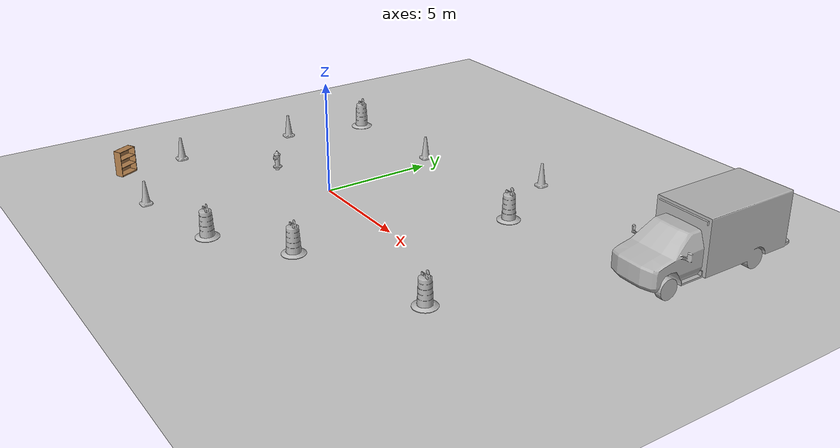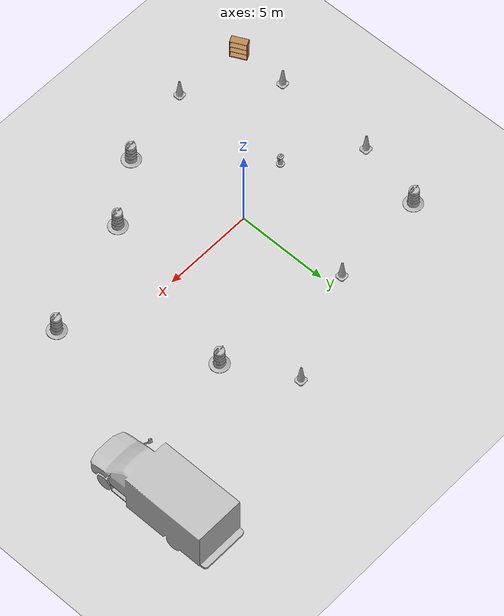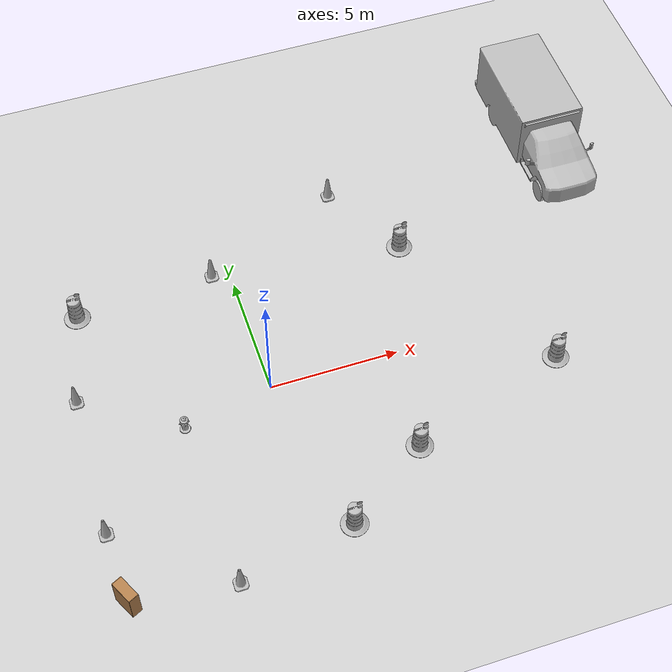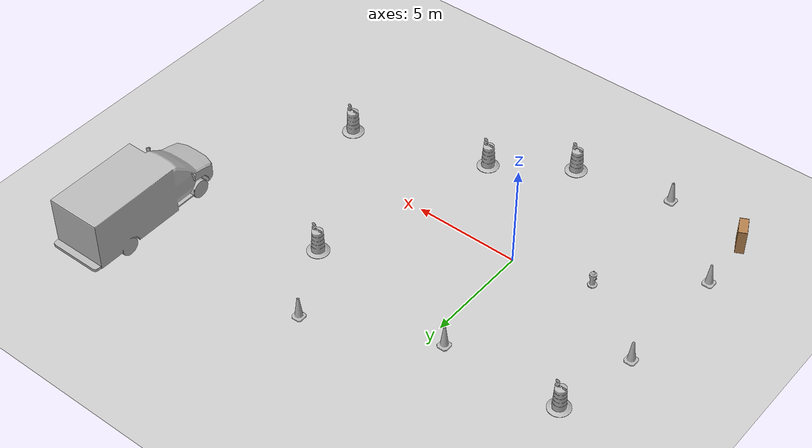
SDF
<sdf version="1.7">
 <world name="default">
  <light name="sun" type="directional">
   <pose>0 0 10 0 -0 0</pose>
   <diffuse>0.8 0.8 0.8 1</diffuse>
   <specular>0.2 0.2 0.2 1</specular>
   <attenuation>
    <range>1000</range>
    <constant>0.9</constant>
    <linear>0.01</linear>
    <quadratic>0.001</quadratic>
   </attenuation>
   <direction>-0.5 0.1 -0.9</direction>
   <spot><inner_angle>0</inner_angle><outer_angle>0</outer_angle><falloff>0</falloff></spot>
  </light>
  <model name="ground_plane">
   <static>1</static>
   <link name="link">
    <collision name="collision">
     <geometry><plane><normal>0 0 1</normal><size>100 100</size></plane></geometry>
     <surface>
      <contact><collide_bitmask>65535</collide_bitmask></contact>
      <friction><ode><mu>100</mu><mu2>50</mu2></ode></friction>
     </surface>
    </collision>
    <visual name="visual">
     <cast_shadows>0</cast_shadows>
     <geometry><plane><normal>0 0 1</normal><size>100 100</size></plane></geometry>
     <material>
      <script><uri>file://media/materials/scripts/gazebo.material</uri><name>Gazebo/Grey</name></script>
     </material>
    </visual>
   </link>
  </model>
  <gravity>0 0 -9.8</gravity>
  <magnetic_field>6e-06 2.3e-05 -4.2e-05</magnetic_field>
  <atmosphere type="adiabatic"/>
  <physics type="ode">
   <max_step_size>0.001</max_step_size>
   <real_time_factor>1</real_time_factor>
   <real_time_update_rate>1000</real_time_update_rate>
  </physics>
  <scene><ambient>0.4 0.4 0.4 1</ambient><background>0.7 0.7 0.7 1</background><shadows>1</shadows></scene>
  <audio><device>default</device></audio>
  <spherical_coordinates>
   <surface_model>EARTH_WGS84</surface_model>
   <latitude_deg>0</latitude_deg>
   <longitude_deg>0</longitude_deg>
   <elevation>0</elevation>
   <heading_deg>0</heading_deg>
  </spherical_coordinates>
  <model name="fire_hydrant">
   <static>1</static>
   <link name="link">
    <collision name="collision">
     <geometry><mesh><uri>model://fire_hydrant/meshes/fire_hydrant.dae</uri></mesh></geometry>
    </collision>
    <visual name="visual">
     <geometry><mesh><uri>model://fire_hydrant/meshes/fire_hydrant.dae</uri></mesh></geometry>
    </visual>
   </link>
   <pose>-3.49613 -0.81055 0 0 -0 0</pose>
  </model>
  <model name="Construction Cone">
   <link name="link">
    <collision name="collision">
     <geometry>
      <mesh><scale>10 10 10</scale><uri>model://construction_cone/meshes/construction_cone.dae</uri></mesh>
     </geometry>
    </collision>
    <visual name="visual">
     <geometry>
      <mesh><scale>10 10 10</scale><uri>model://construction_cone/meshes/construction_cone.dae</uri></mesh>
     </geometry>
    </visual>
    <inertial>
     <inertia><ixx>1</ixx><ixy>0</ixy><ixz>0</ixz><iyy>1</iyy><iyz>0</iyz><izz>1</izz></inertia>
     <mass>1</mass>
    </inertial>
   </link>
   <pose>-0.72152 5.66296 -0 0 -1e-06 0</pose>
  </model>
  <model name="Construction Barrel">
   <link name="link">
    <inertial>
     <pose>0 0 0.4 0 -0 0</pose>
     <mass>500</mass>
     <inertia><ixx>51.2096</ixx><iyy>51.2096</iyy><izz>25</izz><ixy>0</ixy><ixz>0</ixz><iyz>0</iyz></inertia>
    </inertial>
    <collision name="collision">
     <geometry><mesh><uri>model://construction_barrel/meshes/construction_barrel.dae</uri></mesh></geometry>
    </collision>
    <visual name="visual">
     <geometry><mesh><uri>model://construction_barrel/meshes/construction_barrel.dae</uri></mesh></geometry>
    </visual>
   </link>
   <pose>4.40533 -4.11857 0 1e-06 1e-06 -2.7e-05</pose>
  </model>
  <model name="Construction Barrel_0">
   <link name="link">
    <inertial>
     <pose>0 0 0.4 0 -0 0</pose>
     <mass>500</mass>
     <inertia><ixx>51.2096</ixx><iyy>51.2096</iyy><izz>25</izz><ixy>0</ixy><ixz>0</ixz><iyz>0</iyz></inertia>
    </inertial>
    <collision name="collision">
     <geometry><mesh><uri>model://construction_barrel/meshes/construction_barrel.dae</uri></mesh></geometry>
    </collision>
    <visual name="visual">
     <geometry><mesh><uri>model://construction_barrel/meshes/construction_barrel.dae</uri></mesh></geometry>
    </visual>
   </link>
   <pose>6.80226 4.75144 -1e-06 3e-06 7e-06 -2.7e-05</pose>
  </model>
  <model name="Construction Cone_0">
   <link name="link">
    <collision name="collision">
     <geometry>
      <mesh><scale>10 10 10</scale><uri>model://construction_cone/meshes/construction_cone.dae</uri></mesh>
     </geometry>
    </collision>
    <visual name="visual">
     <geometry>
      <mesh><scale>10 10 10</scale><uri>model://construction_cone/meshes/construction_cone.dae</uri></mesh>
     </geometry>
    </visual>
    <inertial>
     <inertia><ixx>1</ixx><ixy>0</ixy><ixz>0</ixz><iyy>1</iyy><iyz>0</iyz><izz>1</izz></inertia>
     <mass>1</mass>
    </inertial>
   </link>
   <pose>-3.25974 -7.2802 -0 1e-06 -0 0</pose>
  </model>
  <model name="Construction Barrel_1">
   <link name="link">
    <inertial>
     <pose>0 0 0.4 0 -0 0</pose>
     <mass>500</mass>
     <inertia><ixx>51.2096</ixx><iyy>51.2096</iyy><izz>25</izz><ixy>0</ixy><ixz>0</ixz><iyz>0</iyz></inertia>
    </inertial>
    <collision name="collision">
     <geometry><mesh><uri>model://construction_barrel/meshes/construction_barrel.dae</uri></mesh></geometry>
    </collision>
    <visual name="visual">
     <geometry><mesh><uri>model://construction_barrel/meshes/construction_barrel.dae</uri></mesh></geometry>
    </visual>
   </link>
   <pose>-6.17237 5.38451 -0 0 0 -2.6e-05</pose>
  </model>
  <model name="Construction Cone_1">
   <link name="link">
    <collision name="collision">
     <geometry>
      <mesh><scale>10 10 10</scale><uri>model://construction_cone/meshes/construction_cone.dae</uri></mesh>
     </geometry>
    </collision>
    <visual name="visual">
     <geometry>
      <mesh><scale>10 10 10</scale><uri>model://construction_cone/meshes/construction_cone.dae</uri></mesh>
     </geometry>
    </visual>
    <inertial>
     <inertia><ixx>1</ixx><ixy>0</ixy><ixz>0</ixz><iyy>1</iyy><iyz>0</iyz><izz>1</izz></inertia>
     <mass>1</mass>
    </inertial>
   </link>
   <pose>-7.19099 -4.03326 -0 0 -1e-06 0</pose>
  </model>
  <model name="Construction Cone_2">
   <link name="link">
    <collision name="collision">
     <geometry>
      <mesh><scale>10 10 10</scale><uri>model://construction_cone/meshes/construction_cone.dae</uri></mesh>
     </geometry>
    </collision>
    <visual name="visual">
     <geometry>
      <mesh><scale>10 10 10</scale><uri>model://construction_cone/meshes/construction_cone.dae</uri></mesh>
     </geometry>
    </visual>
    <inertial>
     <inertia><ixx>1</ixx><ixy>0</ixy><ixz>0</ixz><iyy>1</iyy><iyz>0</iyz><izz>1</izz></inertia>
     <mass>1</mass>
    </inertial>
   </link>
   <pose>-7.02109 1.5937 -1e-05 0 -0 0</pose>
  </model>
  <model name="Construction Barrel_2">
   <link name="link">
    <inertial>
     <pose>0 0 0.4 0 -0 0</pose>
     <mass>500</mass>
     <inertia><ixx>51.2096</ixx><iyy>51.2096</iyy><izz>25</izz><ixy>0</ixy><ixz>0</ixz><iyz>0</iyz></inertia>
    </inertial>
    <collision name="collision">
     <geometry><mesh><uri>model://construction_barrel/meshes/construction_barrel.dae</uri></mesh></geometry>
    </collision>
    <visual name="visual">
     <geometry><mesh><uri>model://construction_barrel/meshes/construction_barrel.dae</uri></mesh></geometry>
    </visual>
   </link>
   <pose>1.14866 -6.34983 -2e-06 -8e-06 -2e-06 -2.1e-05</pose>
  </model>
  <model name="Construction Cone_3">
   <link name="link">
    <collision name="collision">
     <geometry>
      <mesh><scale>10 10 10</scale><uri>model://construction_cone/meshes/construction_cone.dae</uri></mesh>
     </geometry>
    </collision>
    <visual name="visual">
     <geometry>
      <mesh><scale>10 10 10</scale><uri>model://construction_cone/meshes/construction_cone.dae</uri></mesh>
     </geometry>
    </visual>
    <inertial>
     <inertia><ixx>1</ixx><ixy>0</ixy><ixz>0</ixz><iyy>1</iyy><iyz>0</iyz><izz>1</izz></inertia>
     <mass>1</mass>
    </inertial>
   </link>
   <pose>4.90241 8.14393 -1e-05 0 -0 0</pose>
  </model>
  <model name="Construction Barrel_3">
   <link name="link">
    <inertial>
     <pose>0 0 0.4 0 -0 0</pose>
     <mass>500</mass>
     <inertia><ixx>51.2096</ixx><iyy>51.2096</iyy><izz>25</izz><ixy>0</ixy><ixz>0</ixz><iyz>0</iyz></inertia>
    </inertial>
    <collision name="collision">
     <geometry><mesh><uri>model://construction_barrel/meshes/construction_barrel.dae</uri></mesh></geometry>
    </collision>
    <visual name="visual">
     <geometry><mesh><uri>model://construction_barrel/meshes/construction_barrel.dae</uri></mesh></geometry>
    </visual>
   </link>
   <pose>10.6326 -2.10922 0 0 0 -1.6e-05</pose>
  </model>
  <model name="ambulance">
   <static>1</static>
   <link name="link">
    <collision name="collision">
     <geometry>
      <mesh><scale>0.0254 0.0254 0.0254</scale><uri>model://ambulance/meshes/ambulance.obj</uri></mesh>
     </geometry>
    </collision>
    <visual name="visual">
     <geometry>
      <mesh><scale>0.0254 0.0254 0.0254</scale><uri>model://ambulance/meshes/ambulance.obj</uri></mesh>
     </geometry>
    </visual>
   </link>
   <pose>14.1275 8.249 0 0 -0 0</pose>
  </model>
  <model name="bookshelf">
   <static>1</static>
   <link name="link">
    <inertial><mass>1</mass></inertial>
    <collision name="back">
     <pose>0 0.005 0.6 0 -0 0</pose>
     <geometry><box><size>0.9 0.01 1.2</size></box></geometry>
    </collision>
    <visual name="visual1">
     <pose>0 0.005 0.6 0 -0 0</pose>
     <geometry><box><size>0.9 0.01 1.2</size></box></geometry>
     <material>
      <script><uri>file://media/materials/scripts/gazebo.material</uri><name>Gazebo/Wood</name></script>
     </material>
    </visual>
    <collision name="left_side">
     <pose>0.45 -0.195 0.6 0 -0 0</pose>
     <geometry><box><size>0.02 0.4 1.2</size></box></geometry>
    </collision>
    <visual name="visual2">
     <pose>0.45 -0.195 0.6 0 -0 0</pose>
     <geometry><box><size>0.02 0.4 1.2</size></box></geometry>
     <material>
      <script><uri>file://media/materials/scripts/gazebo.material</uri><name>Gazebo/Wood</name></script>
     </material>
    </visual>
    <collision name="right_side">
     <pose>-0.45 -0.195 0.6 0 -0 0</pose>
     <geometry><box><size>0.02 0.4 1.2</size></box></geometry>
    </collision>
    <visual name="visual3">
     <pose>-0.45 -0.195 0.6 0 -0 0</pose>
     <geometry><box><size>0.02 0.4 1.2</size></box></geometry>
     <material>
      <script><uri>file://media/materials/scripts/gazebo.material</uri><name>Gazebo/Wood</name></script>
     </material>
    </visual>
    <collision name="bottom">
     <pose>0 -0.195 0.03 0 -0 0</pose>
     <geometry><box><size>0.88 0.4 0.06</size></box></geometry>
    </collision>
    <visual name="visual4">
     <pose>0 -0.195 0.03 0 -0 0</pose>
     <geometry><box><size>0.88 0.4 0.06</size></box></geometry>
     <material>
      <script><uri>file://media/materials/scripts/gazebo.material</uri><name>Gazebo/Wood</name></script>
     </material>
    </visual>
    <collision name="top">
     <pose>0 -0.195 1.19 0 -0 0</pose>
     <geometry><box><size>0.88 0.4 0.02</size></box></geometry>
    </collision>
    <visual name="visual5">
     <pose>0 -0.195 1.19 0 -0 0</pose>
     <geometry><box><size>0.88 0.4 0.02</size></box></geometry>
     <material>
      <script><uri>file://media/materials/scripts/gazebo.material</uri><name>Gazebo/Wood</name></script>
     </material>
    </visual>
    <collision name="low_shelf">
     <pose>0 -0.195 0.43 0 -0 0</pose>
     <geometry><box><size>0.88 0.4 0.02</size></box></geometry>
    </collision>
    <visual name="visual6">
     <pose>0 -0.195 0.43 0 -0 0</pose>
     <geometry><box><size>0.88 0.4 0.02</size></box></geometry>
     <material>
      <script><uri>file://media/materials/scripts/gazebo.material</uri><name>Gazebo/Wood</name></script>
     </material>
    </visual>
    <collision name="high_shelf">
     <pose>0 -0.195 0.8 0 -0 0</pose>
     <geometry><box><size>0.88 0.4 0.02</size></box></geometry>
    </collision>
    <visual name="visual7">
     <pose>0 -0.195 0.8 0 -0 0</pose>
     <geometry><box><size>0.88 0.4 0.02</size></box></geometry>
     <material>
      <script><uri>file://media/materials/scripts/gazebo.material</uri><name>Gazebo/Wood</name></script>
     </material>
    </visual>
   </link>
   <pose>-7.22045 -6.88447 0 0 -0 2.02838</pose>
  </model>
 </world>
</sdf>
